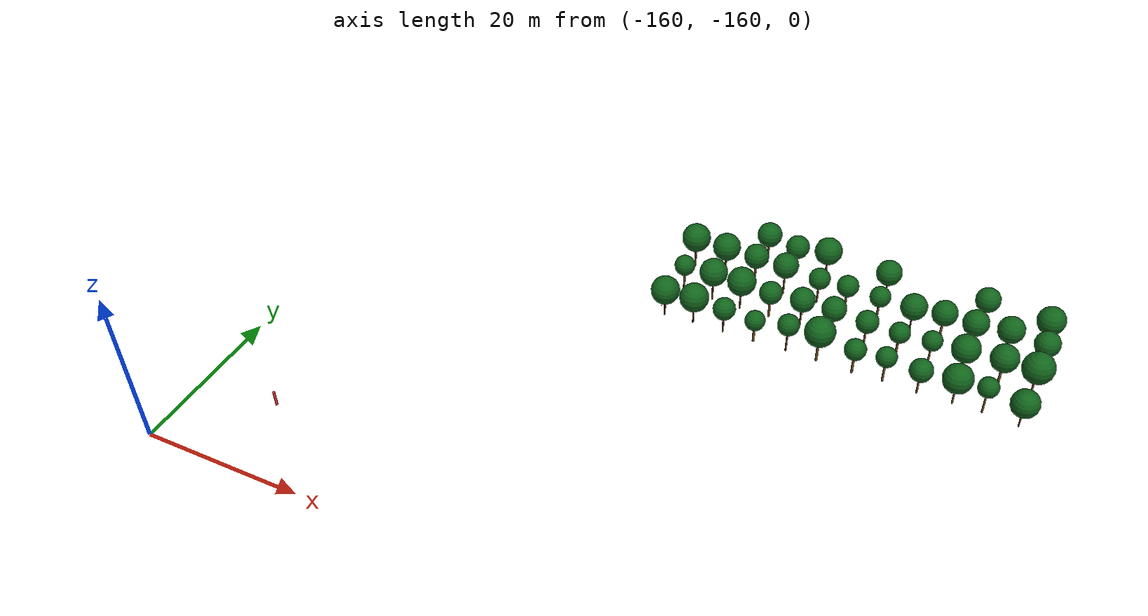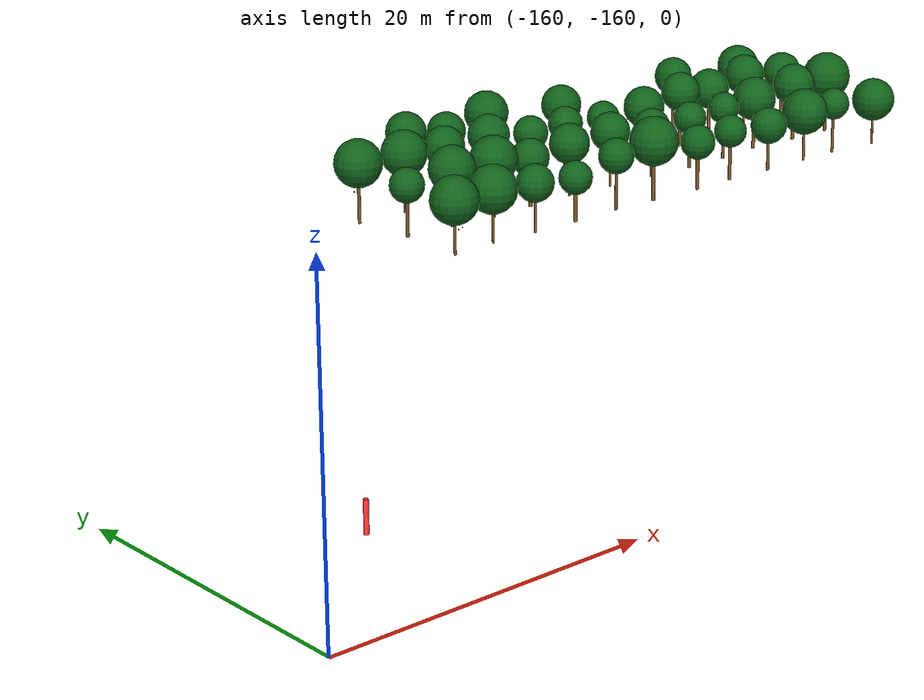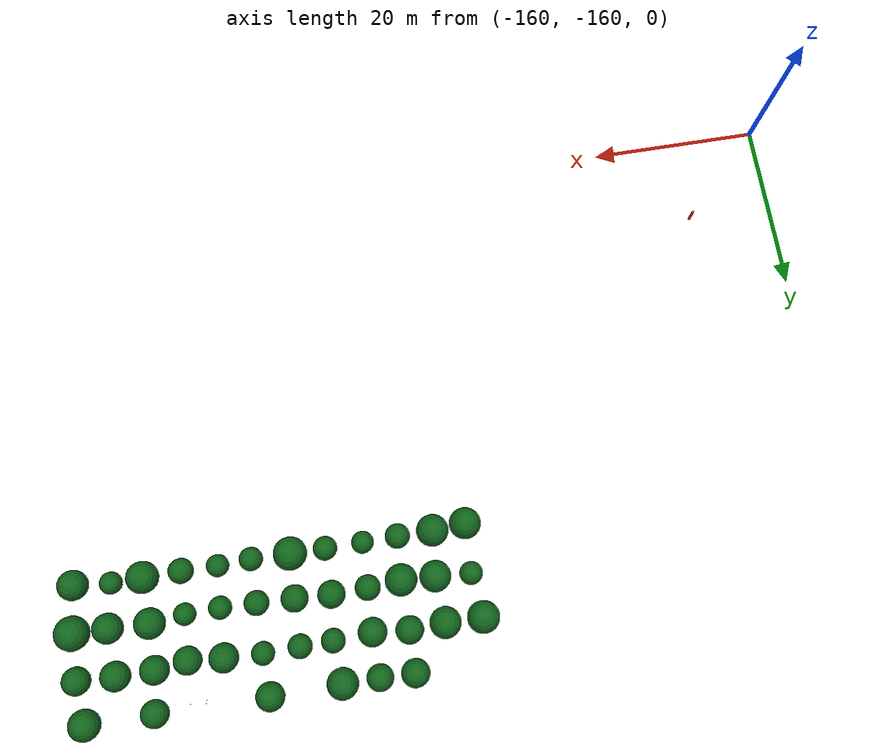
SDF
<sdf version="1.9">
 <world name="cheongsong_orchard">
  <model name="apple_tree_0">
   <static>true</static>
   <pose>-116.11 -116.47 0 0 0 0</pose>
   <link name="link">
    <collision name="trunk_col">
     <pose>0 0 1.11 0 0 0</pose>
     <geometry><cylinder><radius>0.096</radius><length>2.22</length></cylinder></geometry>
    </collision>
    <visual name="trunk_vis">
     <pose>0 0 1.11 0 0 0</pose>
     <geometry><cylinder><radius>0.096</radius><length>2.22</length></cylinder></geometry>
     <material><ambient>0.35 0.22 0.08 1</ambient><diffuse>0.45 0.30 0.12 1</diffuse></material>
    </visual>
    <collision name="canopy_col">
     <pose>0 0 4.01 0 0 0</pose>
     <geometry><sphere><radius>1.79</radius></sphere></geometry>
    </collision>
    <visual name="canopy_vis">
     <pose>0 0 4.01 0 0 0</pose>
     <geometry><sphere><radius>1.79</radius></sphere></geometry>
     <material><ambient>0.04 0.28 0.06 1</ambient><diffuse>0.06 0.38 0.10 1</diffuse></material>
    </visual>
   </link>
  </model>
  <model name="apple_tree_1">
   <static>true</static>
   <pose>-112.39 -116.24 0 0 0 0</pose>
   <link name="link">
    <collision name="trunk_col">
     <pose>0 0 1.11 0 0 0</pose>
     <geometry><cylinder><radius>0.095</radius><length>2.22</length></cylinder></geometry>
    </collision>
    <visual name="trunk_vis">
     <pose>0 0 1.11 0 0 0</pose>
     <geometry><cylinder><radius>0.095</radius><length>2.22</length></cylinder></geometry>
     <material><ambient>0.35 0.22 0.08 1</ambient><diffuse>0.45 0.30 0.12 1</diffuse></material>
    </visual>
    <collision name="canopy_col">
     <pose>0 0 4.03 0 0 0</pose>
     <geometry><sphere><radius>1.81</radius></sphere></geometry>
    </collision>
    <visual name="canopy_vis">
     <pose>0 0 4.03 0 0 0</pose>
     <geometry><sphere><radius>1.81</radius></sphere></geometry>
     <material><ambient>0.04 0.28 0.06 1</ambient><diffuse>0.06 0.38 0.10 1</diffuse></material>
    </visual>
   </link>
  </model>
  <model name="apple_tree_2">
   <static>true</static>
   <pose>-108.43 -116.26 0 0 0 0</pose>
   <link name="link">
    <collision name="trunk_col">
     <pose>0 0 1.15 0 0 0</pose>
     <geometry><cylinder><radius>0.104</radius><length>2.30</length></cylinder></geometry>
    </collision>
    <visual name="trunk_vis">
     <pose>0 0 1.15 0 0 0</pose>
     <geometry><cylinder><radius>0.104</radius><length>2.30</length></cylinder></geometry>
     <material><ambient>0.35 0.22 0.08 1</ambient><diffuse>0.45 0.30 0.12 1</diffuse></material>
    </visual>
    <collision name="canopy_col">
     <pose>0 0 3.71 0 0 0</pose>
     <geometry><sphere><radius>1.41</radius></sphere></geometry>
    </collision>
    <visual name="canopy_vis">
     <pose>0 0 3.71 0 0 0</pose>
     <geometry><sphere><radius>1.41</radius></sphere></geometry>
     <material><ambient>0.04 0.28 0.06 1</ambient><diffuse>0.06 0.38 0.10 1</diffuse></material>
    </visual>
   </link>
  </model>
  <model name="apple_tree_3">
   <static>true</static>
   <pose>-104.46 -116.21 0 0 0 0</pose>
   <link name="link">
    <collision name="trunk_col">
     <pose>0 0 1.04 0 0 0</pose>
     <geometry><cylinder><radius>0.145</radius><length>2.07</length></cylinder></geometry>
    </collision>
    <visual name="trunk_vis">
     <pose>0 0 1.04 0 0 0</pose>
     <geometry><cylinder><radius>0.145</radius><length>2.07</length></cylinder></geometry>
     <material><ambient>0.35 0.22 0.08 1</ambient><diffuse>0.45 0.30 0.12 1</diffuse></material>
    </visual>
    <collision name="canopy_col">
     <pose>0 0 3.33 0 0 0</pose>
     <geometry><sphere><radius>1.26</radius></sphere></geometry>
    </collision>
    <visual name="canopy_vis">
     <pose>0 0 3.33 0 0 0</pose>
     <geometry><sphere><radius>1.26</radius></sphere></geometry>
     <material><ambient>0.04 0.28 0.06 1</ambient><diffuse>0.06 0.38 0.10 1</diffuse></material>
    </visual>
   </link>
  </model>
  <model name="apple_tree_4">
   <static>true</static>
   <pose>-100.31 -116.11 0 0 0 0</pose>
   <link name="link">
    <collision name="trunk_col">
     <pose>0 0 1.41 0 0 0</pose>
     <geometry><cylinder><radius>0.105</radius><length>2.81</length></cylinder></geometry>
    </collision>
    <visual name="trunk_vis">
     <pose>0 0 1.41 0 0 0</pose>
     <geometry><cylinder><radius>0.105</radius><length>2.81</length></cylinder></geometry>
     <material><ambient>0.35 0.22 0.08 1</ambient><diffuse>0.45 0.30 0.12 1</diffuse></material>
    </visual>
    <collision name="canopy_col">
     <pose>0 0 4.17 0 0 0</pose>
     <geometry><sphere><radius>1.35</radius></sphere></geometry>
    </collision>
    <visual name="canopy_vis">
     <pose>0 0 4.17 0 0 0</pose>
     <geometry><sphere><radius>1.35</radius></sphere></geometry>
     <material><ambient>0.04 0.28 0.06 1</ambient><diffuse>0.06 0.38 0.10 1</diffuse></material>
    </visual>
   </link>
  </model>
  <model name="apple_tree_5">
   <static>true</static>
   <pose>-96.45 -116.09 0 0 0 0</pose>
   <link name="link">
    <collision name="trunk_col">
     <pose>0 0 1.35 0 0 0</pose>
     <geometry><cylinder><radius>0.149</radius><length>2.70</length></cylinder></geometry>
    </collision>
    <visual name="trunk_vis">
     <pose>0 0 1.35 0 0 0</pose>
     <geometry><cylinder><radius>0.149</radius><length>2.70</length></cylinder></geometry>
     <material><ambient>0.35 0.22 0.08 1</ambient><diffuse>0.45 0.30 0.12 1</diffuse></material>
    </visual>
    <collision name="canopy_col">
     <pose>0 0 4.59 0 0 0</pose>
     <geometry><sphere><radius>1.88</radius></sphere></geometry>
    </collision>
    <visual name="canopy_vis">
     <pose>0 0 4.59 0 0 0</pose>
     <geometry><sphere><radius>1.88</radius></sphere></geometry>
     <material><ambient>0.04 0.28 0.06 1</ambient><diffuse>0.06 0.38 0.10 1</diffuse></material>
    </visual>
   </link>
  </model>
  <model name="apple_tree_6">
   <static>true</static>
   <pose>-91.97 -116.26 0 0 0 0</pose>
   <link name="link">
    <collision name="trunk_col">
     <pose>0 0 1.20 0 0 0</pose>
     <geometry><cylinder><radius>0.138</radius><length>2.39</length></cylinder></geometry>
    </collision>
    <visual name="trunk_vis">
     <pose>0 0 1.20 0 0 0</pose>
     <geometry><cylinder><radius>0.138</radius><length>2.39</length></cylinder></geometry>
     <material><ambient>0.35 0.22 0.08 1</ambient><diffuse>0.45 0.30 0.12 1</diffuse></material>
    </visual>
    <collision name="canopy_col">
     <pose>0 0 3.72 0 0 0</pose>
     <geometry><sphere><radius>1.33</radius></sphere></geometry>
    </collision>
    <visual name="canopy_vis">
     <pose>0 0 3.72 0 0 0</pose>
     <geometry><sphere><radius>1.33</radius></sphere></geometry>
     <material><ambient>0.04 0.28 0.06 1</ambient><diffuse>0.06 0.38 0.10 1</diffuse></material>
    </visual>
   </link>
  </model>
  <model name="apple_tree_7">
   <static>true</static>
   <pose>-88.28 -116.09 0 0 0 0</pose>
   <link name="link">
    <collision name="trunk_col">
     <pose>0 0 1.32 0 0 0</pose>
     <geometry><cylinder><radius>0.128</radius><length>2.63</length></cylinder></geometry>
    </collision>
    <visual name="trunk_vis">
     <pose>0 0 1.32 0 0 0</pose>
     <geometry><cylinder><radius>0.128</radius><length>2.63</length></cylinder></geometry>
     <material><ambient>0.35 0.22 0.08 1</ambient><diffuse>0.45 0.30 0.12 1</diffuse></material>
    </visual>
    <collision name="canopy_col">
     <pose>0 0 3.89 0 0 0</pose>
     <geometry><sphere><radius>1.26</radius></sphere></geometry>
    </collision>
    <visual name="canopy_vis">
     <pose>0 0 3.89 0 0 0</pose>
     <geometry><sphere><radius>1.26</radius></sphere></geometry>
     <material><ambient>0.04 0.28 0.06 1</ambient><diffuse>0.06 0.38 0.10 1</diffuse></material>
    </visual>
   </link>
  </model>
  <model name="apple_tree_8">
   <static>true</static>
   <pose>-84.11 -116.17 0 0 0 0</pose>
   <link name="link">
    <collision name="trunk_col">
     <pose>0 0 1.09 0 0 0</pose>
     <geometry><cylinder><radius>0.112</radius><length>2.19</length></cylinder></geometry>
    </collision>
    <visual name="trunk_vis">
     <pose>0 0 1.09 0 0 0</pose>
     <geometry><cylinder><radius>0.112</radius><length>2.19</length></cylinder></geometry>
     <material><ambient>0.35 0.22 0.08 1</ambient><diffuse>0.45 0.30 0.12 1</diffuse></material>
    </visual>
    <collision name="canopy_col">
     <pose>0 0 3.60 0 0 0</pose>
     <geometry><sphere><radius>1.42</radius></sphere></geometry>
    </collision>
    <visual name="canopy_vis">
     <pose>0 0 3.60 0 0 0</pose>
     <geometry><sphere><radius>1.42</radius></sphere></geometry>
     <material><ambient>0.04 0.28 0.06 1</ambient><diffuse>0.06 0.38 0.10 1</diffuse></material>
    </visual>
   </link>
  </model>
  <model name="apple_tree_9">
   <static>true</static>
   <pose>-79.93 -116.08 0 0 0 0</pose>
   <link name="link">
    <collision name="trunk_col">
     <pose>0 0 1.08 0 0 0</pose>
     <geometry><cylinder><radius>0.103</radius><length>2.16</length></cylinder></geometry>
    </collision>
    <visual name="trunk_vis">
     <pose>0 0 1.08 0 0 0</pose>
     <geometry><cylinder><radius>0.103</radius><length>2.16</length></cylinder></geometry>
     <material><ambient>0.35 0.22 0.08 1</ambient><diffuse>0.45 0.30 0.12 1</diffuse></material>
    </visual>
    <collision name="canopy_col">
     <pose>0 0 3.98 0 0 0</pose>
     <geometry><sphere><radius>1.81</radius></sphere></geometry>
    </collision>
    <visual name="canopy_vis">
     <pose>0 0 3.98 0 0 0</pose>
     <geometry><sphere><radius>1.81</radius></sphere></geometry>
     <material><ambient>0.04 0.28 0.06 1</ambient><diffuse>0.06 0.38 0.10 1</diffuse></material>
    </visual>
   </link>
  </model>
  <model name="apple_tree_10">
   <static>true</static>
   <pose>-76.46 -116.00 0 0 0 0</pose>
   <link name="link">
    <collision name="trunk_col">
     <pose>0 0 1.37 0 0 0</pose>
     <geometry><cylinder><radius>0.108</radius><length>2.73</length></cylinder></geometry>
    </collision>
    <visual name="trunk_vis">
     <pose>0 0 1.37 0 0 0</pose>
     <geometry><cylinder><radius>0.108</radius><length>2.73</length></cylinder></geometry>
     <material><ambient>0.35 0.22 0.08 1</ambient><diffuse>0.45 0.30 0.12 1</diffuse></material>
    </visual>
    <collision name="canopy_col">
     <pose>0 0 3.99 0 0 0</pose>
     <geometry><sphere><radius>1.25</radius></sphere></geometry>
    </collision>
    <visual name="canopy_vis">
     <pose>0 0 3.99 0 0 0</pose>
     <geometry><sphere><radius>1.25</radius></sphere></geometry>
     <material><ambient>0.04 0.28 0.06 1</ambient><diffuse>0.06 0.38 0.10 1</diffuse></material>
    </visual>
   </link>
  </model>
  <model name="apple_tree_11">
   <static>true</static>
   <pose>-72.18 -116.43 0 0 0 0</pose>
   <link name="link">
    <collision name="trunk_col">
     <pose>0 0 1.00 0 0 0</pose>
     <geometry><cylinder><radius>0.088</radius><length>2.00</length></cylinder></geometry>
    </collision>
    <visual name="trunk_vis">
     <pose>0 0 1.00 0 0 0</pose>
     <geometry><cylinder><radius>0.088</radius><length>2.00</length></cylinder></geometry>
     <material><ambient>0.35 0.22 0.08 1</ambient><diffuse>0.45 0.30 0.12 1</diffuse></material>
    </visual>
    <collision name="canopy_col">
     <pose>0 0 3.70 0 0 0</pose>
     <geometry><sphere><radius>1.70</radius></sphere></geometry>
    </collision>
    <visual name="canopy_vis">
     <pose>0 0 3.70 0 0 0</pose>
     <geometry><sphere><radius>1.70</radius></sphere></geometry>
     <material><ambient>0.04 0.28 0.06 1</ambient><diffuse>0.06 0.38 0.10 1</diffuse></material>
    </visual>
   </link>
  </model>
  <model name="apple_tree_56">
   <static>true</static>
   <pose>-115.92 -110.94 0 0 0 0</pose>
   <link name="link">
    <collision name="trunk_col">
     <pose>0 0 1.28 0 0 0</pose>
     <geometry><cylinder><radius>0.126</radius><length>2.56</length></cylinder></geometry>
    </collision>
    <visual name="trunk_vis">
     <pose>0 0 1.28 0 0 0</pose>
     <geometry><cylinder><radius>0.126</radius><length>2.56</length></cylinder></geometry>
     <material><ambient>0.35 0.22 0.08 1</ambient><diffuse>0.45 0.30 0.12 1</diffuse></material>
    </visual>
    <collision name="canopy_col">
     <pose>0 0 3.86 0 0 0</pose>
     <geometry><sphere><radius>1.30</radius></sphere></geometry>
    </collision>
    <visual name="canopy_vis">
     <pose>0 0 3.86 0 0 0</pose>
     <geometry><sphere><radius>1.30</radius></sphere></geometry>
     <material><ambient>0.04 0.28 0.06 1</ambient><diffuse>0.06 0.38 0.10 1</diffuse></material>
    </visual>
   </link>
  </model>
  <model name="apple_tree_57">
   <static>true</static>
   <pose>-111.95 -111.19 0 0 0 0</pose>
   <link name="link">
    <collision name="trunk_col">
     <pose>0 0 1.30 0 0 0</pose>
     <geometry><cylinder><radius>0.103</radius><length>2.60</length></cylinder></geometry>
    </collision>
    <visual name="trunk_vis">
     <pose>0 0 1.30 0 0 0</pose>
     <geometry><cylinder><radius>0.103</radius><length>2.60</length></cylinder></geometry>
     <material><ambient>0.35 0.22 0.08 1</ambient><diffuse>0.45 0.30 0.12 1</diffuse></material>
    </visual>
    <collision name="canopy_col">
     <pose>0 0 4.36 0 0 0</pose>
     <geometry><sphere><radius>1.76</radius></sphere></geometry>
    </collision>
    <visual name="canopy_vis">
     <pose>0 0 4.36 0 0 0</pose>
     <geometry><sphere><radius>1.76</radius></sphere></geometry>
     <material><ambient>0.04 0.28 0.06 1</ambient><diffuse>0.06 0.38 0.10 1</diffuse></material>
    </visual>
   </link>
  </model>
  <model name="apple_tree_58">
   <static>true</static>
   <pose>-108.16 -111.37 0 0 0 0</pose>
   <link name="link">
    <collision name="trunk_col">
     <pose>0 0 1.30 0 0 0</pose>
     <geometry><cylinder><radius>0.107</radius><length>2.60</length></cylinder></geometry>
    </collision>
    <visual name="trunk_vis">
     <pose>0 0 1.30 0 0 0</pose>
     <geometry><cylinder><radius>0.107</radius><length>2.60</length></cylinder></geometry>
     <material><ambient>0.35 0.22 0.08 1</ambient><diffuse>0.45 0.30 0.12 1</diffuse></material>
    </visual>
    <collision name="canopy_col">
     <pose>0 0 4.40 0 0 0</pose>
     <geometry><sphere><radius>1.80</radius></sphere></geometry>
    </collision>
    <visual name="canopy_vis">
     <pose>0 0 4.40 0 0 0</pose>
     <geometry><sphere><radius>1.80</radius></sphere></geometry>
     <material><ambient>0.04 0.28 0.06 1</ambient><diffuse>0.06 0.38 0.10 1</diffuse></material>
    </visual>
   </link>
  </model>
  <model name="apple_tree_59">
   <static>true</static>
   <pose>-104.39 -111.15 0 0 0 0</pose>
   <link name="link">
    <collision name="trunk_col">
     <pose>0 0 1.17 0 0 0</pose>
     <geometry><cylinder><radius>0.138</radius><length>2.35</length></cylinder></geometry>
    </collision>
    <visual name="trunk_vis">
     <pose>0 0 1.17 0 0 0</pose>
     <geometry><cylinder><radius>0.138</radius><length>2.35</length></cylinder></geometry>
     <material><ambient>0.35 0.22 0.08 1</ambient><diffuse>0.45 0.30 0.12 1</diffuse></material>
    </visual>
    <collision name="canopy_col">
     <pose>0 0 3.79 0 0 0</pose>
     <geometry><sphere><radius>1.44</radius></sphere></geometry>
    </collision>
    <visual name="canopy_vis">
     <pose>0 0 3.79 0 0 0</pose>
     <geometry><sphere><radius>1.44</radius></sphere></geometry>
     <material><ambient>0.04 0.28 0.06 1</ambient><diffuse>0.06 0.38 0.10 1</diffuse></material>
    </visual>
   </link>
  </model>
  <model name="apple_tree_60">
   <static>true</static>
   <pose>-100.36 -111.02 0 0 0 0</pose>
   <link name="link">
    <collision name="trunk_col">
     <pose>0 0 1.27 0 0 0</pose>
     <geometry><cylinder><radius>0.103</radius><length>2.54</length></cylinder></geometry>
    </collision>
    <visual name="trunk_vis">
     <pose>0 0 1.27 0 0 0</pose>
     <geometry><cylinder><radius>0.103</radius><length>2.54</length></cylinder></geometry>
     <material><ambient>0.35 0.22 0.08 1</ambient><diffuse>0.45 0.30 0.12 1</diffuse></material>
    </visual>
    <collision name="canopy_col">
     <pose>0 0 4.09 0 0 0</pose>
     <geometry><sphere><radius>1.55</radius></sphere></geometry>
    </collision>
    <visual name="canopy_vis">
     <pose>0 0 4.09 0 0 0</pose>
     <geometry><sphere><radius>1.55</radius></sphere></geometry>
     <material><ambient>0.04 0.28 0.06 1</ambient><diffuse>0.06 0.38 0.10 1</diffuse></material>
    </visual>
   </link>
  </model>
  <model name="apple_tree_61">
   <static>true</static>
   <pose>-96.34 -111.20 0 0 0 0</pose>
   <link name="link">
    <collision name="trunk_col">
     <pose>0 0 1.39 0 0 0</pose>
     <geometry><cylinder><radius>0.085</radius><length>2.78</length></cylinder></geometry>
    </collision>
    <visual name="trunk_vis">
     <pose>0 0 1.39 0 0 0</pose>
     <geometry><cylinder><radius>0.085</radius><length>2.78</length></cylinder></geometry>
     <material><ambient>0.35 0.22 0.08 1</ambient><diffuse>0.45 0.30 0.12 1</diffuse></material>
    </visual>
    <collision name="canopy_col">
     <pose>0 0 4.31 0 0 0</pose>
     <geometry><sphere><radius>1.53</radius></sphere></geometry>
    </collision>
    <visual name="canopy_vis">
     <pose>0 0 4.31 0 0 0</pose>
     <geometry><sphere><radius>1.53</radius></sphere></geometry>
     <material><ambient>0.04 0.28 0.06 1</ambient><diffuse>0.06 0.38 0.10 1</diffuse></material>
    </visual>
   </link>
  </model>
  <model name="apple_tree_62">
   <static>true</static>
   <pose>-92.11 -111.37 0 0 0 0</pose>
   <link name="link">
    <collision name="trunk_col">
     <pose>0 0 1.31 0 0 0</pose>
     <geometry><cylinder><radius>0.115</radius><length>2.63</length></cylinder></geometry>
    </collision>
    <visual name="trunk_vis">
     <pose>0 0 1.31 0 0 0</pose>
     <geometry><cylinder><radius>0.115</radius><length>2.63</length></cylinder></geometry>
     <material><ambient>0.35 0.22 0.08 1</ambient><diffuse>0.45 0.30 0.12 1</diffuse></material>
    </visual>
    <collision name="canopy_col">
     <pose>0 0 4.02 0 0 0</pose>
     <geometry><sphere><radius>1.40</radius></sphere></geometry>
    </collision>
    <visual name="canopy_vis">
     <pose>0 0 4.02 0 0 0</pose>
     <geometry><sphere><radius>1.40</radius></sphere></geometry>
     <material><ambient>0.04 0.28 0.06 1</ambient><diffuse>0.06 0.38 0.10 1</diffuse></material>
    </visual>
   </link>
  </model>
  <model name="apple_tree_63">
   <static>true</static>
   <pose>-88.10 -111.49 0 0 0 0</pose>
   <link name="link">
    <collision name="trunk_col">
     <pose>0 0 1.34 0 0 0</pose>
     <geometry><cylinder><radius>0.134</radius><length>2.68</length></cylinder></geometry>
    </collision>
    <visual name="trunk_vis">
     <pose>0 0 1.34 0 0 0</pose>
     <geometry><cylinder><radius>0.134</radius><length>2.68</length></cylinder></geometry>
     <material><ambient>0.35 0.22 0.08 1</ambient><diffuse>0.45 0.30 0.12 1</diffuse></material>
    </visual>
    <collision name="canopy_col">
     <pose>0 0 3.97 0 0 0</pose>
     <geometry><sphere><radius>1.29</radius></sphere></geometry>
    </collision>
    <visual name="canopy_vis">
     <pose>0 0 3.97 0 0 0</pose>
     <geometry><sphere><radius>1.29</radius></sphere></geometry>
     <material><ambient>0.04 0.28 0.06 1</ambient><diffuse>0.06 0.38 0.10 1</diffuse></material>
    </visual>
   </link>
  </model>
  <model name="apple_tree_64">
   <static>true</static>
   <pose>-84.23 -111.38 0 0 0 0</pose>
   <link name="link">
    <collision name="trunk_col">
     <pose>0 0 1.44 0 0 0</pose>
     <geometry><cylinder><radius>0.116</radius><length>2.88</length></cylinder></geometry>
    </collision>
    <visual name="trunk_vis">
     <pose>0 0 1.44 0 0 0</pose>
     <geometry><cylinder><radius>0.116</radius><length>2.88</length></cylinder></geometry>
     <material><ambient>0.35 0.22 0.08 1</ambient><diffuse>0.45 0.30 0.12 1</diffuse></material>
    </visual>
    <collision name="canopy_col">
     <pose>0 0 4.12 0 0 0</pose>
     <geometry><sphere><radius>1.24</radius></sphere></geometry>
    </collision>
    <visual name="canopy_vis">
     <pose>0 0 4.12 0 0 0</pose>
     <geometry><sphere><radius>1.24</radius></sphere></geometry>
     <material><ambient>0.04 0.28 0.06 1</ambient><diffuse>0.06 0.38 0.10 1</diffuse></material>
    </visual>
   </link>
  </model>
  <model name="apple_tree_65">
   <static>true</static>
   <pose>-80.34 -110.98 0 0 0 0</pose>
   <link name="link">
    <collision name="trunk_col">
     <pose>0 0 1.20 0 0 0</pose>
     <geometry><cylinder><radius>0.136</radius><length>2.40</length></cylinder></geometry>
    </collision>
    <visual name="trunk_vis">
     <pose>0 0 1.20 0 0 0</pose>
     <geometry><cylinder><radius>0.136</radius><length>2.40</length></cylinder></geometry>
     <material><ambient>0.35 0.22 0.08 1</ambient><diffuse>0.45 0.30 0.12 1</diffuse></material>
    </visual>
    <collision name="canopy_col">
     <pose>0 0 4.13 0 0 0</pose>
     <geometry><sphere><radius>1.73</radius></sphere></geometry>
    </collision>
    <visual name="canopy_vis">
     <pose>0 0 4.13 0 0 0</pose>
     <geometry><sphere><radius>1.73</radius></sphere></geometry>
     <material><ambient>0.04 0.28 0.06 1</ambient><diffuse>0.06 0.38 0.10 1</diffuse></material>
    </visual>
   </link>
  </model>
  <model name="apple_tree_66">
   <static>true</static>
   <pose>-75.90 -111.13 0 0 0 0</pose>
   <link name="link">
    <collision name="trunk_col">
     <pose>0 0 1.44 0 0 0</pose>
     <geometry><cylinder><radius>0.142</radius><length>2.88</length></cylinder></geometry>
    </collision>
    <visual name="trunk_vis">
     <pose>0 0 1.44 0 0 0</pose>
     <geometry><cylinder><radius>0.142</radius><length>2.88</length></cylinder></geometry>
     <material><ambient>0.35 0.22 0.08 1</ambient><diffuse>0.45 0.30 0.12 1</diffuse></material>
    </visual>
    <collision name="canopy_col">
     <pose>0 0 4.57 0 0 0</pose>
     <geometry><sphere><radius>1.69</radius></sphere></geometry>
    </collision>
    <visual name="canopy_vis">
     <pose>0 0 4.57 0 0 0</pose>
     <geometry><sphere><radius>1.69</radius></sphere></geometry>
     <material><ambient>0.04 0.28 0.06 1</ambient><diffuse>0.06 0.38 0.10 1</diffuse></material>
    </visual>
   </link>
  </model>
  <model name="apple_tree_67">
   <static>true</static>
   <pose>-72.06 -111.19 0 0 0 0</pose>
   <link name="link">
    <collision name="trunk_col">
     <pose>0 0 1.38 0 0 0</pose>
     <geometry><cylinder><radius>0.118</radius><length>2.76</length></cylinder></geometry>
    </collision>
    <visual name="trunk_vis">
     <pose>0 0 1.38 0 0 0</pose>
     <geometry><cylinder><radius>0.118</radius><length>2.76</length></cylinder></geometry>
     <material><ambient>0.35 0.22 0.08 1</ambient><diffuse>0.45 0.30 0.12 1</diffuse></material>
    </visual>
    <collision name="canopy_col">
     <pose>0 0 4.68 0 0 0</pose>
     <geometry><sphere><radius>1.92</radius></sphere></geometry>
    </collision>
    <visual name="canopy_vis">
     <pose>0 0 4.68 0 0 0</pose>
     <geometry><sphere><radius>1.92</radius></sphere></geometry>
     <material><ambient>0.04 0.28 0.06 1</ambient><diffuse>0.06 0.38 0.10 1</diffuse></material>
    </visual>
   </link>
  </model>
  <model name="apple_tree_110">
   <static>true</static>
   <pose>-116.48 -106.03 0 0 0 0</pose>
   <link name="link">
    <collision name="trunk_col">
     <pose>0 0 1.38 0 0 0</pose>
     <geometry><cylinder><radius>0.120</radius><length>2.75</length></cylinder></geometry>
    </collision>
    <visual name="trunk_vis">
     <pose>0 0 1.38 0 0 0</pose>
     <geometry><cylinder><radius>0.120</radius><length>2.75</length></cylinder></geometry>
     <material><ambient>0.35 0.22 0.08 1</ambient><diffuse>0.45 0.30 0.12 1</diffuse></material>
    </visual>
    <collision name="canopy_col">
     <pose>0 0 4.56 0 0 0</pose>
     <geometry><sphere><radius>1.81</radius></sphere></geometry>
    </collision>
    <visual name="canopy_vis">
     <pose>0 0 4.56 0 0 0</pose>
     <geometry><sphere><radius>1.81</radius></sphere></geometry>
     <material><ambient>0.04 0.28 0.06 1</ambient><diffuse>0.06 0.38 0.10 1</diffuse></material>
    </visual>
   </link>
  </model>
  <model name="apple_tree_111">
   <static>true</static>
   <pose>-112.29 -106.09 0 0 0 0</pose>
   <link name="link">
    <collision name="trunk_col">
     <pose>0 0 1.39 0 0 0</pose>
     <geometry><cylinder><radius>0.103</radius><length>2.79</length></cylinder></geometry>
    </collision>
    <visual name="trunk_vis">
     <pose>0 0 1.39 0 0 0</pose>
     <geometry><cylinder><radius>0.103</radius><length>2.79</length></cylinder></geometry>
     <material><ambient>0.35 0.22 0.08 1</ambient><diffuse>0.45 0.30 0.12 1</diffuse></material>
    </visual>
    <collision name="canopy_col">
     <pose>0 0 4.54 0 0 0</pose>
     <geometry><sphere><radius>1.75</radius></sphere></geometry>
    </collision>
    <visual name="canopy_vis">
     <pose>0 0 4.54 0 0 0</pose>
     <geometry><sphere><radius>1.75</radius></sphere></geometry>
     <material><ambient>0.04 0.28 0.06 1</ambient><diffuse>0.06 0.38 0.10 1</diffuse></material>
    </visual>
   </link>
  </model>
  <model name="apple_tree_112">
   <static>true</static>
   <pose>-108.32 -105.92 0 0 0 0</pose>
   <link name="link">
    <collision name="trunk_col">
     <pose>0 0 1.37 0 0 0</pose>
     <geometry><cylinder><radius>0.119</radius><length>2.74</length></cylinder></geometry>
    </collision>
    <visual name="trunk_vis">
     <pose>0 0 1.37 0 0 0</pose>
     <geometry><cylinder><radius>0.119</radius><length>2.74</length></cylinder></geometry>
     <material><ambient>0.35 0.22 0.08 1</ambient><diffuse>0.45 0.30 0.12 1</diffuse></material>
    </visual>
    <collision name="canopy_col">
     <pose>0 0 4.31 0 0 0</pose>
     <geometry><sphere><radius>1.56</radius></sphere></geometry>
    </collision>
    <visual name="canopy_vis">
     <pose>0 0 4.31 0 0 0</pose>
     <geometry><sphere><radius>1.56</radius></sphere></geometry>
     <material><ambient>0.04 0.28 0.06 1</ambient><diffuse>0.06 0.38 0.10 1</diffuse></material>
    </visual>
   </link>
  </model>
  <model name="apple_tree_113">
   <static>true</static>
   <pose>-104.30 -106.30 0 0 0 0</pose>
   <link name="link">
    <collision name="trunk_col">
     <pose>0 0 1.45 0 0 0</pose>
     <geometry><cylinder><radius>0.108</radius><length>2.90</length></cylinder></geometry>
    </collision>
    <visual name="trunk_vis">
     <pose>0 0 1.45 0 0 0</pose>
     <geometry><cylinder><radius>0.108</radius><length>2.90</length></cylinder></geometry>
     <material><ambient>0.35 0.22 0.08 1</ambient><diffuse>0.45 0.30 0.12 1</diffuse></material>
    </visual>
    <collision name="canopy_col">
     <pose>0 0 4.51 0 0 0</pose>
     <geometry><sphere><radius>1.61</radius></sphere></geometry>
    </collision>
    <visual name="canopy_vis">
     <pose>0 0 4.51 0 0 0</pose>
     <geometry><sphere><radius>1.61</radius></sphere></geometry>
     <material><ambient>0.04 0.28 0.06 1</ambient><diffuse>0.06 0.38 0.10 1</diffuse></material>
    </visual>
   </link>
  </model>
  <model name="apple_tree_114">
   <static>true</static>
   <pose>-99.90 -106.09 0 0 0 0</pose>
   <link name="link">
    <collision name="trunk_col">
     <pose>0 0 1.24 0 0 0</pose>
     <geometry><cylinder><radius>0.109</radius><length>2.48</length></cylinder></geometry>
    </collision>
    <visual name="trunk_vis">
     <pose>0 0 1.24 0 0 0</pose>
     <geometry><cylinder><radius>0.109</radius><length>2.48</length></cylinder></geometry>
     <material><ambient>0.35 0.22 0.08 1</ambient><diffuse>0.45 0.30 0.12 1</diffuse></material>
    </visual>
    <collision name="canopy_col">
     <pose>0 0 3.83 0 0 0</pose>
     <geometry><sphere><radius>1.35</radius></sphere></geometry>
    </collision>
    <visual name="canopy_vis">
     <pose>0 0 3.83 0 0 0</pose>
     <geometry><sphere><radius>1.35</radius></sphere></geometry>
     <material><ambient>0.04 0.28 0.06 1</ambient><diffuse>0.06 0.38 0.10 1</diffuse></material>
    </visual>
   </link>
  </model>
  <model name="apple_tree_115">
   <static>true</static>
   <pose>-96.27 -106.04 0 0 0 0</pose>
   <link name="link">
    <collision name="trunk_col">
     <pose>0 0 1.28 0 0 0</pose>
     <geometry><cylinder><radius>0.133</radius><length>2.56</length></cylinder></geometry>
    </collision>
    <visual name="trunk_vis">
     <pose>0 0 1.28 0 0 0</pose>
     <geometry><cylinder><radius>0.133</radius><length>2.56</length></cylinder></geometry>
     <material><ambient>0.35 0.22 0.08 1</ambient><diffuse>0.45 0.30 0.12 1</diffuse></material>
    </visual>
    <collision name="canopy_col">
     <pose>0 0 3.92 0 0 0</pose>
     <geometry><sphere><radius>1.36</radius></sphere></geometry>
    </collision>
    <visual name="canopy_vis">
     <pose>0 0 3.92 0 0 0</pose>
     <geometry><sphere><radius>1.36</radius></sphere></geometry>
     <material><ambient>0.04 0.28 0.06 1</ambient><diffuse>0.06 0.38 0.10 1</diffuse></material>
    </visual>
   </link>
  </model>
  <model name="apple_tree_116">
   <static>true</static>
   <pose>-92.16 -105.93 0 0 0 0</pose>
   <link name="link">
    <collision name="trunk_col">
     <pose>0 0 1.19 0 0 0</pose>
     <geometry><cylinder><radius>0.129</radius><length>2.38</length></cylinder></geometry>
    </collision>
    <visual name="trunk_vis">
     <pose>0 0 1.19 0 0 0</pose>
     <geometry><cylinder><radius>0.129</radius><length>2.38</length></cylinder></geometry>
     <material><ambient>0.35 0.22 0.08 1</ambient><diffuse>0.45 0.30 0.12 1</diffuse></material>
    </visual>
    <collision name="canopy_col">
     <pose>0 0 3.67 0 0 0</pose>
     <geometry><sphere><radius>1.30</radius></sphere></geometry>
    </collision>
    <visual name="canopy_vis">
     <pose>0 0 3.67 0 0 0</pose>
     <geometry><sphere><radius>1.30</radius></sphere></geometry>
     <material><ambient>0.04 0.28 0.06 1</ambient><diffuse>0.06 0.38 0.10 1</diffuse></material>
    </visual>
   </link>
  </model>
  <model name="apple_tree_117">
   <static>true</static>
   <pose>-87.91 -106.12 0 0 0 0</pose>
   <link name="link">
    <collision name="trunk_col">
     <pose>0 0 1.09 0 0 0</pose>
     <geometry><cylinder><radius>0.091</radius><length>2.18</length></cylinder></geometry>
    </collision>
    <visual name="trunk_vis">
     <pose>0 0 1.09 0 0 0</pose>
     <geometry><cylinder><radius>0.091</radius><length>2.18</length></cylinder></geometry>
     <material><ambient>0.35 0.22 0.08 1</ambient><diffuse>0.45 0.30 0.12 1</diffuse></material>
    </visual>
    <collision name="canopy_col">
     <pose>0 0 3.82 0 0 0</pose>
     <geometry><sphere><radius>1.64</radius></sphere></geometry>
    </collision>
    <visual name="canopy_vis">
     <pose>0 0 3.82 0 0 0</pose>
     <geometry><sphere><radius>1.64</radius></sphere></geometry>
     <material><ambient>0.04 0.28 0.06 1</ambient><diffuse>0.06 0.38 0.10 1</diffuse></material>
    </visual>
   </link>
  </model>
  <model name="apple_tree_118">
   <static>true</static>
   <pose>-84.16 -106.43 0 0 0 0</pose>
   <link name="link">
    <collision name="trunk_col">
     <pose>0 0 1.46 0 0 0</pose>
     <geometry><cylinder><radius>0.144</radius><length>2.92</length></cylinder></geometry>
    </collision>
    <visual name="trunk_vis">
     <pose>0 0 1.46 0 0 0</pose>
     <geometry><cylinder><radius>0.144</radius><length>2.92</length></cylinder></geometry>
     <material><ambient>0.35 0.22 0.08 1</ambient><diffuse>0.45 0.30 0.12 1</diffuse></material>
    </visual>
    <collision name="canopy_col">
     <pose>0 0 4.49 0 0 0</pose>
     <geometry><sphere><radius>1.57</radius></sphere></geometry>
    </collision>
    <visual name="canopy_vis">
     <pose>0 0 4.49 0 0 0</pose>
     <geometry><sphere><radius>1.57</radius></sphere></geometry>
     <material><ambient>0.04 0.28 0.06 1</ambient><diffuse>0.06 0.38 0.10 1</diffuse></material>
    </visual>
   </link>
  </model>
  <model name="apple_tree_119">
   <static>true</static>
   <pose>-80.42 -105.99 0 0 0 0</pose>
   <link name="link">
    <collision name="trunk_col">
     <pose>0 0 1.22 0 0 0</pose>
     <geometry><cylinder><radius>0.130</radius><length>2.44</length></cylinder></geometry>
    </collision>
    <visual name="trunk_vis">
     <pose>0 0 1.22 0 0 0</pose>
     <geometry><cylinder><radius>0.130</radius><length>2.44</length></cylinder></geometry>
     <material><ambient>0.35 0.22 0.08 1</ambient><diffuse>0.45 0.30 0.12 1</diffuse></material>
    </visual>
    <collision name="canopy_col">
     <pose>0 0 4.04 0 0 0</pose>
     <geometry><sphere><radius>1.61</radius></sphere></geometry>
    </collision>
    <visual name="canopy_vis">
     <pose>0 0 4.04 0 0 0</pose>
     <geometry><sphere><radius>1.61</radius></sphere></geometry>
     <material><ambient>0.04 0.28 0.06 1</ambient><diffuse>0.06 0.38 0.10 1</diffuse></material>
    </visual>
   </link>
  </model>
  <model name="apple_tree_120">
   <static>true</static>
   <pose>-76.33 -105.99 0 0 0 0</pose>
   <link name="link">
    <collision name="trunk_col">
     <pose>0 0 1.45 0 0 0</pose>
     <geometry><cylinder><radius>0.097</radius><length>2.91</length></cylinder></geometry>
    </collision>
    <visual name="trunk_vis">
     <pose>0 0 1.45 0 0 0</pose>
     <geometry><cylinder><radius>0.097</radius><length>2.91</length></cylinder></geometry>
     <material><ambient>0.35 0.22 0.08 1</ambient><diffuse>0.45 0.30 0.12 1</diffuse></material>
    </visual>
    <collision name="canopy_col">
     <pose>0 0 4.55 0 0 0</pose>
     <geometry><sphere><radius>1.64</radius></sphere></geometry>
    </collision>
    <visual name="canopy_vis">
     <pose>0 0 4.55 0 0 0</pose>
     <geometry><sphere><radius>1.64</radius></sphere></geometry>
     <material><ambient>0.04 0.28 0.06 1</ambient><diffuse>0.06 0.38 0.10 1</diffuse></material>
    </visual>
   </link>
  </model>
  <model name="apple_tree_121">
   <static>true</static>
   <pose>-71.99 -106.14 0 0 0 0</pose>
   <link name="link">
    <collision name="trunk_col">
     <pose>0 0 1.30 0 0 0</pose>
     <geometry><cylinder><radius>0.141</radius><length>2.59</length></cylinder></geometry>
    </collision>
    <visual name="trunk_vis">
     <pose>0 0 1.30 0 0 0</pose>
     <geometry><cylinder><radius>0.141</radius><length>2.59</length></cylinder></geometry>
     <material><ambient>0.35 0.22 0.08 1</ambient><diffuse>0.45 0.30 0.12 1</diffuse></material>
    </visual>
    <collision name="canopy_col">
     <pose>0 0 4.15 0 0 0</pose>
     <geometry><sphere><radius>1.56</radius></sphere></geometry>
    </collision>
    <visual name="canopy_vis">
     <pose>0 0 4.15 0 0 0</pose>
     <geometry><sphere><radius>1.56</radius></sphere></geometry>
     <material><ambient>0.04 0.28 0.06 1</ambient><diffuse>0.06 0.38 0.10 1</diffuse></material>
    </visual>
   </link>
  </model>
  <model name="apple_tree_164">
   <static>true</static>
   <pose>-108.30 -101.34 0 0 0 0</pose>
   <link name="link">
    <collision name="trunk_col">
     <pose>0 0 1.44 0 0 0</pose>
     <geometry><cylinder><radius>0.128</radius><length>2.88</length></cylinder></geometry>
    </collision>
    <visual name="trunk_vis">
     <pose>0 0 1.44 0 0 0</pose>
     <geometry><cylinder><radius>0.128</radius><length>2.88</length></cylinder></geometry>
     <material><ambient>0.35 0.22 0.08 1</ambient><diffuse>0.45 0.30 0.12 1</diffuse></material>
    </visual>
    <collision name="canopy_col">
     <pose>0 0 4.46 0 0 0</pose>
     <geometry><sphere><radius>1.58</radius></sphere></geometry>
    </collision>
    <visual name="canopy_vis">
     <pose>0 0 4.46 0 0 0</pose>
     <geometry><sphere><radius>1.58</radius></sphere></geometry>
     <material><ambient>0.04 0.28 0.06 1</ambient><diffuse>0.06 0.38 0.10 1</diffuse></material>
    </visual>
   </link>
  </model>
  <model name="apple_tree_165">
   <static>true</static>
   <pose>-104.43 -101.44 0 0 0 0</pose>
   <link name="link">
    <collision name="trunk_col">
     <pose>0 0 1.19 0 0 0</pose>
     <geometry><cylinder><radius>0.132</radius><length>2.37</length></cylinder></geometry>
    </collision>
    <visual name="trunk_vis">
     <pose>0 0 1.19 0 0 0</pose>
     <geometry><cylinder><radius>0.132</radius><length>2.37</length></cylinder></geometry>
     <material><ambient>0.35 0.22 0.08 1</ambient><diffuse>0.45 0.30 0.12 1</diffuse></material>
    </visual>
    <collision name="canopy_col">
     <pose>0 0 3.87 0 0 0</pose>
     <geometry><sphere><radius>1.50</radius></sphere></geometry>
    </collision>
    <visual name="canopy_vis">
     <pose>0 0 3.87 0 0 0</pose>
     <geometry><sphere><radius>1.50</radius></sphere></geometry>
     <material><ambient>0.04 0.28 0.06 1</ambient><diffuse>0.06 0.38 0.10 1</diffuse></material>
    </visual>
   </link>
  </model>
  <model name="apple_tree_166">
   <static>true</static>
   <pose>-100.41 -101.45 0 0 0 0</pose>
   <link name="link">
    <collision name="trunk_col">
     <pose>0 0 1.44 0 0 0</pose>
     <geometry><cylinder><radius>0.119</radius><length>2.88</length></cylinder></geometry>
    </collision>
    <visual name="trunk_vis">
     <pose>0 0 1.44 0 0 0</pose>
     <geometry><cylinder><radius>0.119</radius><length>2.88</length></cylinder></geometry>
     <material><ambient>0.35 0.22 0.08 1</ambient><diffuse>0.45 0.30 0.12 1</diffuse></material>
    </visual>
    <collision name="canopy_col">
     <pose>0 0 4.62 0 0 0</pose>
     <geometry><sphere><radius>1.74</radius></sphere></geometry>
    </collision>
    <visual name="canopy_vis">
     <pose>0 0 4.62 0 0 0</pose>
     <geometry><sphere><radius>1.74</radius></sphere></geometry>
     <material><ambient>0.04 0.28 0.06 1</ambient><diffuse>0.06 0.38 0.10 1</diffuse></material>
    </visual>
   </link>
  </model>
  <model name="apple_tree_168">
   <static>true</static>
   <pose>-92.46 -101.32 0 0 0 0</pose>
   <link name="link">
    <collision name="trunk_col">
     <pose>0 0 1.13 0 0 0</pose>
     <geometry><cylinder><radius>0.087</radius><length>2.25</length></cylinder></geometry>
    </collision>
    <visual name="trunk_vis">
     <pose>0 0 1.13 0 0 0</pose>
     <geometry><cylinder><radius>0.087</radius><length>2.25</length></cylinder></geometry>
     <material><ambient>0.35 0.22 0.08 1</ambient><diffuse>0.45 0.30 0.12 1</diffuse></material>
    </visual>
    <collision name="canopy_col">
     <pose>0 0 3.86 0 0 0</pose>
     <geometry><sphere><radius>1.61</radius></sphere></geometry>
    </collision>
    <visual name="canopy_vis">
     <pose>0 0 3.86 0 0 0</pose>
     <geometry><sphere><radius>1.61</radius></sphere></geometry>
     <material><ambient>0.04 0.28 0.06 1</ambient><diffuse>0.06 0.38 0.10 1</diffuse></material>
    </visual>
   </link>
  </model>
  <model name="apple_tree_171">
   <static>true</static>
   <pose>-80.11 -101.47 0 0 0 0</pose>
   <link name="link">
    <collision name="trunk_col">
     <pose>0 0 1.34 0 0 0</pose>
     <geometry><cylinder><radius>0.095</radius><length>2.68</length></cylinder></geometry>
    </collision>
    <visual name="trunk_vis">
     <pose>0 0 1.34 0 0 0</pose>
     <geometry><cylinder><radius>0.095</radius><length>2.68</length></cylinder></geometry>
     <material><ambient>0.35 0.22 0.08 1</ambient><diffuse>0.45 0.30 0.12 1</diffuse></material>
    </visual>
    <collision name="canopy_col">
     <pose>0 0 4.21 0 0 0</pose>
     <geometry><sphere><radius>1.54</radius></sphere></geometry>
    </collision>
    <visual name="canopy_vis">
     <pose>0 0 4.21 0 0 0</pose>
     <geometry><sphere><radius>1.54</radius></sphere></geometry>
     <material><ambient>0.04 0.28 0.06 1</ambient><diffuse>0.06 0.38 0.10 1</diffuse></material>
    </visual>
   </link>
  </model>
  <model name="apple_tree_173">
   <static>true</static>
   <pose>-72.44 -101.46 0 0 0 0</pose>
   <link name="link">
    <collision name="trunk_col">
     <pose>0 0 1.05 0 0 0</pose>
     <geometry><cylinder><radius>0.123</radius><length>2.10</length></cylinder></geometry>
    </collision>
    <visual name="trunk_vis">
     <pose>0 0 1.05 0 0 0</pose>
     <geometry><cylinder><radius>0.123</radius><length>2.10</length></cylinder></geometry>
     <material><ambient>0.35 0.22 0.08 1</ambient><diffuse>0.45 0.30 0.12 1</diffuse></material>
    </visual>
    <collision name="canopy_col">
     <pose>0 0 3.84 0 0 0</pose>
     <geometry><sphere><radius>1.74</radius></sphere></geometry>
    </collision>
    <visual name="canopy_vis">
     <pose>0 0 3.84 0 0 0</pose>
     <geometry><sphere><radius>1.74</radius></sphere></geometry>
     <material><ambient>0.04 0.28 0.06 1</ambient><diffuse>0.06 0.38 0.10 1</diffuse></material>
    </visual>
   </link>
  </model>
  <model name="apple_0_0">
   <static>true</static>
   <pose>-116.16 -117.39 2.24 0 0 0</pose>
   <link name="link">
    <visual name="visual">
     <geometry><sphere><radius>0.04</radius></sphere></geometry>
     <material><ambient>0.7 0.05 0.02 1</ambient><diffuse>0.9 0.10 0.05 1</diffuse></material>
    </visual>
   </link>
  </model>
  <model name="apple_0_1">
   <static>true</static>
   <pose>-115.71 -116.39 1.79 0 0 0</pose>
   <link name="link">
    <visual name="visual">
     <geometry><sphere><radius>0.04</radius></sphere></geometry>
     <material><ambient>0.7 0.05 0.02 1</ambient><diffuse>0.9 0.10 0.05 1</diffuse></material>
    </visual>
   </link>
  </model>
  <model name="apple_0_2">
   <static>true</static>
   <pose>-116.86 -117.03 2.40 0 0 0</pose>
   <link name="link">
    <visual name="visual">
     <geometry><sphere><radius>0.04</radius></sphere></geometry>
     <material><ambient>0.7 0.05 0.02 1</ambient><diffuse>0.9 0.10 0.05 1</diffuse></material>
    </visual>
   </link>
  </model>
  <model name="apple_0_3">
   <static>true</static>
   <pose>-116.34 -117.21 2.07 0 0 0</pose>
   <link name="link">
    <visual name="visual">
     <geometry><sphere><radius>0.04</radius></sphere></geometry>
     <material><ambient>0.7 0.05 0.02 1</ambient><diffuse>0.9 0.10 0.05 1</diffuse></material>
    </visual>
   </link>
  </model>
  <model name="apple_0_4">
   <static>true</static>
   <pose>-116.33 -115.21 2.45 0 0 0</pose>
   <link name="link">
    <visual name="visual">
     <geometry><sphere><radius>0.04</radius></sphere></geometry>
     <material><ambient>0.7 0.05 0.02 1</ambient><diffuse>0.9 0.10 0.05 1</diffuse></material>
    </visual>
   </link>
  </model>
  <model name="apple_10_0">
   <static>true</static>
   <pose>-76.08 -116.36 2.81 0 0 0</pose>
   <link name="link">
    <visual name="visual">
     <geometry><sphere><radius>0.04</radius></sphere></geometry>
     <material><ambient>0.7 0.05 0.02 1</ambient><diffuse>0.9 0.10 0.05 1</diffuse></material>
    </visual>
   </link>
  </model>
  <model name="apple_10_1">
   <static>true</static>
   <pose>-77.20 -115.42 2.64 0 0 0</pose>
   <link name="link">
    <visual name="visual">
     <geometry><sphere><radius>0.04</radius></sphere></geometry>
     <material><ambient>0.7 0.05 0.02 1</ambient><diffuse>0.9 0.10 0.05 1</diffuse></material>
    </visual>
   </link>
  </model>
  <model name="apple_10_2">
   <static>true</static>
   <pose>-76.50 -115.53 2.73 0 0 0</pose>
   <link name="link">
    <visual name="visual">
     <geometry><sphere><radius>0.04</radius></sphere></geometry>
     <material><ambient>0.7 0.05 0.02 1</ambient><diffuse>0.9 0.10 0.05 1</diffuse></material>
    </visual>
   </link>
  </model>
  <model name="apple_10_3">
   <static>true</static>
   <pose>-76.51 -115.29 3.02 0 0 0</pose>
   <link name="link">
    <visual name="visual">
     <geometry><sphere><radius>0.04</radius></sphere></geometry>
     <material><ambient>0.7 0.05 0.02 1</ambient><diffuse>0.9 0.10 0.05 1</diffuse></material>
    </visual>
   </link>
  </model>
  <model name="apple_10_4">
   <static>true</static>
   <pose>-76.82 -115.73 3.11 0 0 0</pose>
   <link name="link">
    <visual name="visual">
     <geometry><sphere><radius>0.04</radius></sphere></geometry>
     <material><ambient>0.7 0.05 0.02 1</ambient><diffuse>0.9 0.10 0.05 1</diffuse></material>
    </visual>
   </link>
  </model>
  <model name="apple_60_0">
   <static>true</static>
   <pose>-100.19 -110.29 2.90 0 0 0</pose>
   <link name="link">
    <visual name="visual">
     <geometry><sphere><radius>0.04</radius></sphere></geometry>
     <material><ambient>0.7 0.05 0.02 1</ambient><diffuse>0.9 0.10 0.05 1</diffuse></material>
    </visual>
   </link>
  </model>
  <model name="apple_60_1">
   <static>true</static>
   <pose>-100.23 -111.46 2.01 0 0 0</pose>
   <link name="link">
    <visual name="visual">
     <geometry><sphere><radius>0.04</radius></sphere></geometry>
     <material><ambient>0.7 0.05 0.02 1</ambient><diffuse>0.9 0.10 0.05 1</diffuse></material>
    </visual>
   </link>
  </model>
  <model name="apple_60_2">
   <static>true</static>
   <pose>-101.26 -111.10 2.28 0 0 0</pose>
   <link name="link">
    <visual name="visual">
     <geometry><sphere><radius>0.04</radius></sphere></geometry>
     <material><ambient>0.7 0.05 0.02 1</ambient><diffuse>0.9 0.10 0.05 1</diffuse></material>
    </visual>
   </link>
  </model>
  <model name="apple_60_3">
   <static>true</static>
   <pose>-99.94 -111.93 2.65 0 0 0</pose>
   <link name="link">
    <visual name="visual">
     <geometry><sphere><radius>0.04</radius></sphere></geometry>
     <material><ambient>0.7 0.05 0.02 1</ambient><diffuse>0.9 0.10 0.05 1</diffuse></material>
    </visual>
   </link>
  </model>
  <model name="apple_60_4">
   <static>true</static>
   <pose>-100.29 -110.54 1.95 0 0 0</pose>
   <link name="link">
    <visual name="visual">
     <geometry><sphere><radius>0.04</radius></sphere></geometry>
     <material><ambient>0.7 0.05 0.02 1</ambient><diffuse>0.9 0.10 0.05 1</diffuse></material>
    </visual>
   </link>
  </model>
  <model name="apple_110_0">
   <static>true</static>
   <pose>-117.51 -105.84 3.19 0 0 0</pose>
   <link name="link">
    <visual name="visual">
     <geometry><sphere><radius>0.04</radius></sphere></geometry>
     <material><ambient>0.7 0.05 0.02 1</ambient><diffuse>0.9 0.10 0.05 1</diffuse></material>
    </visual>
   </link>
  </model>
  <model name="apple_110_1">
   <static>true</static>
   <pose>-116.07 -105.15 2.83 0 0 0</pose>
   <link name="link">
    <visual name="visual">
     <geometry><sphere><radius>0.04</radius></sphere></geometry>
     <material><ambient>0.7 0.05 0.02 1</ambient><diffuse>0.9 0.10 0.05 1</diffuse></material>
    </visual>
   </link>
  </model>
  <model name="apple_110_2">
   <static>true</static>
   <pose>-116.88 -106.01 2.47 0 0 0</pose>
   <link name="link">
    <visual name="visual">
     <geometry><sphere><radius>0.04</radius></sphere></geometry>
     <material><ambient>0.7 0.05 0.02 1</ambient><diffuse>0.9 0.10 0.05 1</diffuse></material>
    </visual>
   </link>
  </model>
  <model name="apple_120_0">
   <static>true</static>
   <pose>-75.99 -105.14 3.11 0 0 0</pose>
   <link name="link">
    <visual name="visual">
     <geometry><sphere><radius>0.04</radius></sphere></geometry>
     <material><ambient>0.7 0.05 0.02 1</ambient><diffuse>0.9 0.10 0.05 1</diffuse></material>
    </visual>
   </link>
  </model>
  <model name="apple_120_1">
   <static>true</static>
   <pose>-76.08 -105.71 3.14 0 0 0</pose>
   <link name="link">
    <visual name="visual">
     <geometry><sphere><radius>0.04</radius></sphere></geometry>
     <material><ambient>0.7 0.05 0.02 1</ambient><diffuse>0.9 0.10 0.05 1</diffuse></material>
    </visual>
   </link>
  </model>
  <model name="apple_120_2">
   <static>true</static>
   <pose>-75.93 -106.50 3.15 0 0 0</pose>
   <link name="link">
    <visual name="visual">
     <geometry><sphere><radius>0.04</radius></sphere></geometry>
     <material><ambient>0.7 0.05 0.02 1</ambient><diffuse>0.9 0.10 0.05 1</diffuse></material>
    </visual>
   </link>
  </model>
  <model name="apple_120_3">
   <static>true</static>
   <pose>-76.36 -105.69 3.08 0 0 0</pose>
   <link name="link">
    <visual name="visual">
     <geometry><sphere><radius>0.04</radius></sphere></geometry>
     <material><ambient>0.7 0.05 0.02 1</ambient><diffuse>0.9 0.10 0.05 1</diffuse></material>
    </visual>
   </link>
  </model>
  <model name="apple_170_0">
   <static>true</static>
   <pose>-85.14 -101.95 1.54 0 0 0</pose>
   <link name="link">
    <visual name="visual">
     <geometry><sphere><radius>0.04</radius></sphere></geometry>
     <material><ambient>0.7 0.05 0.02 1</ambient><diffuse>0.9 0.10 0.05 1</diffuse></material>
    </visual>
   </link>
  </model>
  <model name="apple_170_1">
   <static>true</static>
   <pose>-83.39 -101.82 1.82 0 0 0</pose>
   <link name="link">
    <visual name="visual">
     <geometry><sphere><radius>0.04</radius></sphere></geometry>
     <material><ambient>0.7 0.05 0.02 1</ambient><diffuse>0.9 0.10 0.05 1</diffuse></material>
    </visual>
   </link>
  </model>
  <model name="apple_170_4">
   <static>true</static>
   <pose>-85.07 -101.61 1.67 0 0 0</pose>
   <link name="link">
    <visual name="visual">
     <geometry><sphere><radius>0.04</radius></sphere></geometry>
     <material><ambient>0.7 0.05 0.02 1</ambient><diffuse>0.9 0.10 0.05 1</diffuse></material>
    </visual>
   </link>
  </model>
  <model name="marker_sw">
   <static>true</static>
   <pose>-150.0 -150.0 1.0 0 0 0</pose>
   <link name="link">
    <visual name="visual">
     <geometry><cylinder><radius>0.15</radius><length>2.0</length></cylinder></geometry>
     <material><ambient>1 0 0 1</ambient><diffuse>1 0.2 0.2 1</diffuse></material>
    </visual>
   </link>
  </model>
 </world>
</sdf>
